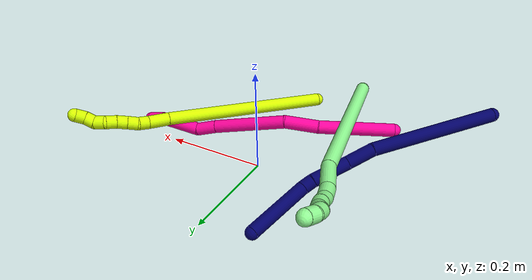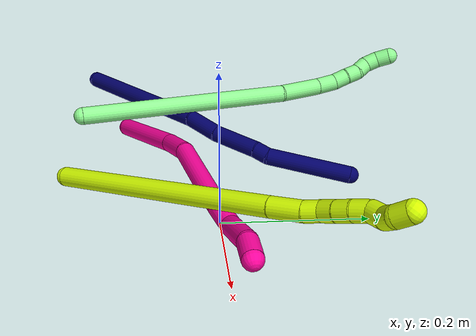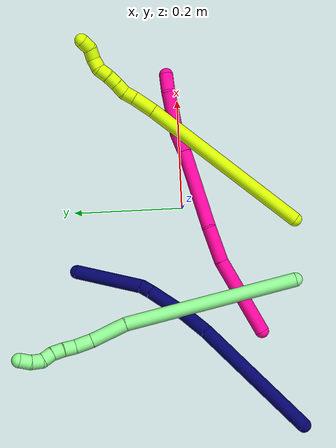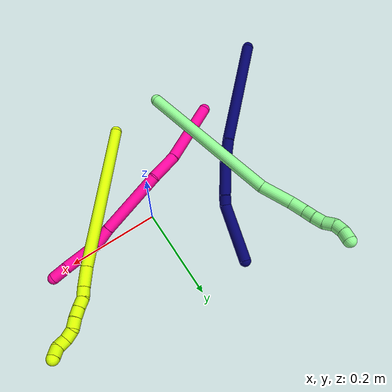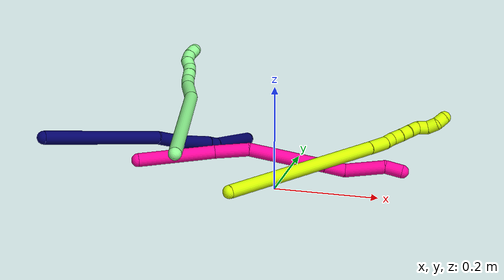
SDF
<sdf version="1.7">
 <world name="default">
  <model name="7">
   <static>0</static>
   <link name="7">
    <collision name="collision-cylinder-e_1_1_4">
     <pose>0.03947 0.033111 -0.104006 -2.83338 0.346983 -1.69114</pose>
     <geometry><cylinder><radius>0.0125</radius><length>0.232133</length></cylinder></geometry>
     <surface>
      <friction><ode><mu>1.16</mu><mu2>1.16</mu2><slip1>0</slip1><slip2>0</slip2></ode></friction>
      <contact><ode><kp>1e+06</kp><kd>1</kd><max_vel>0</max_vel><min_depth>0.001</min_depth></ode></contact>
     </surface>
    </collision>
    <visual name="visual-cylinder-e_1_1_4">
     <pose>0.03947 0.033111 -0.104006 -2.83338 0.346983 -1.69114</pose>
     <geometry><cylinder><radius>0.0125</radius><length>0.232133</length></cylinder></geometry>
     <material><ambient>0.003922 0 0.403922 1</ambient></material>
    </visual>
    <collision name="collision-cylinder-e_2_4_5">
     <pose>0.083935 0.070529 -0.233065 -2.97134 0.194028 -1.70188</pose>
     <geometry><cylinder><radius>0.0125</radius><length>0.051814</length></cylinder></geometry>
     <surface>
      <friction><ode><mu>1.16</mu><mu2>1.16</mu2><slip1>0</slip1><slip2>0</slip2></ode></friction>
      <contact><ode><kp>1e+06</kp><kd>1</kd><max_vel>0</max_vel><min_depth>0.001</min_depth></ode></contact>
     </surface>
    </collision>
    <visual name="visual-cylinder-e_2_4_5">
     <pose>0.083935 0.070529 -0.233065 -2.97134 0.194028 -1.70188</pose>
     <geometry><cylinder><radius>0.0125</radius><length>0.051814</length></cylinder></geometry>
     <material><ambient>0.003922 0 0.403922 1</ambient></material>
    </visual>
    <collision name="collision-cylinder-e_3_5_6">
     <pose>0.094014 0.085254 -0.291618 -2.84008 0.143908 -0.886062</pose>
     <geometry><cylinder><radius>0.0125</radius><length>0.070897</length></cylinder></geometry>
     <surface>
      <friction><ode><mu>1.16</mu><mu2>1.16</mu2><slip1>0</slip1><slip2>0</slip2></ode></friction>
      <contact><ode><kp>1e+06</kp><kd>1</kd><max_vel>0</max_vel><min_depth>0.001</min_depth></ode></contact>
     </surface>
    </collision>
    <visual name="visual-cylinder-e_3_5_6">
     <pose>0.094014 0.085254 -0.291618 -2.84008 0.143908 -0.886062</pose>
     <geometry><cylinder><radius>0.0125</radius><length>0.070897</length></cylinder></geometry>
     <material><ambient>0.003922 0 0.403922 1</ambient></material>
    </visual>
    <collision name="collision-cylinder-e_4_6_7">
     <pose>0.099503 0.097653 -0.335599 -2.95478 0.037955 -0.39979</pose>
     <geometry><cylinder><radius>0.0125</radius><length>0.021349</length></cylinder></geometry>
     <surface>
      <friction><ode><mu>1.16</mu><mu2>1.16</mu2><slip1>0</slip1><slip2>0</slip2></ode></friction>
      <contact><ode><kp>1e+06</kp><kd>1</kd><max_vel>0</max_vel><min_depth>0.001</min_depth></ode></contact>
     </surface>
    </collision>
    <visual name="visual-cylinder-e_4_6_7">
     <pose>0.099503 0.097653 -0.335599 -2.95478 0.037955 -0.39979</pose>
     <geometry><cylinder><radius>0.0125</radius><length>0.021349</length></cylinder></geometry>
     <material><ambient>0.003922 0 0.403922 1</ambient></material>
    </visual>
    <collision name="collision-cylinder-e_5_7_2">
     <pose>0.089048 0.126234 -0.400912 -2.68992 -0.176348 0.734621</pose>
     <geometry><cylinder><radius>0.0125</radius><length>0.123807</length></cylinder></geometry>
     <surface>
      <friction><ode><mu>1.16</mu><mu2>1.16</mu2><slip1>0</slip1><slip2>0</slip2></ode></friction>
      <contact><ode><kp>1e+06</kp><kd>1</kd><max_vel>0</max_vel><min_depth>0.001</min_depth></ode></contact>
     </surface>
    </collision>
    <visual name="visual-cylinder-e_5_7_2">
     <pose>0.089048 0.126234 -0.400912 -2.68992 -0.176348 0.734621</pose>
     <geometry><cylinder><radius>0.0125</radius><length>0.123807</length></cylinder></geometry>
     <material><ambient>0.003922 0 0.403922 1</ambient></material>
    </visual>
    <collision name="collision-sphere-2">
     <pose>0.078188 0.152834 -0.455744 0 -0 0</pose>
     <geometry><sphere><radius>0.0125</radius></sphere></geometry>
     <surface>
      <friction><ode><mu>1.16</mu><mu2>1.16</mu2><slip1>0</slip1><slip2>0</slip2></ode></friction>
      <contact><ode><kp>1e+06</kp><kd>1</kd><max_vel>0</max_vel><min_depth>0.001</min_depth></ode></contact>
     </surface>
    </collision>
    <visual name="visual-sphere-2">
     <pose>0.078188 0.152834 -0.455744 0 -0 0</pose>
     <geometry><sphere><radius>0.0125</radius></sphere></geometry>
     <material><ambient>0.003922 0 0.403922 1</ambient></material>
    </visual>
    <collision name="collision-sphere-7">
     <pose>0.099908 0.099634 -0.34608 0 -0 0</pose>
     <geometry><sphere><radius>0.0125</radius></sphere></geometry>
     <surface>
      <friction><ode><mu>1.16</mu><mu2>1.16</mu2><slip1>0</slip1><slip2>0</slip2></ode></friction>
      <contact><ode><kp>1e+06</kp><kd>1</kd><max_vel>0</max_vel><min_depth>0.001</min_depth></ode></contact>
     </surface>
    </collision>
    <visual name="visual-sphere-7">
     <pose>0.099908 0.099634 -0.34608 0 -0 0</pose>
     <geometry><sphere><radius>0.0125</radius></sphere></geometry>
     <material><ambient>0.003922 0 0.403922 1</ambient></material>
    </visual>
    <collision name="collision-sphere-6">
     <pose>0.099098 0.095672 -0.325118 0 -0 0</pose>
     <geometry><sphere><radius>0.0125</radius></sphere></geometry>
     <surface>
      <friction><ode><mu>1.16</mu><mu2>1.16</mu2><slip1>0</slip1><slip2>0</slip2></ode></friction>
      <contact><ode><kp>1e+06</kp><kd>1</kd><max_vel>0</max_vel><min_depth>0.001</min_depth></ode></contact>
     </surface>
    </collision>
    <visual name="visual-sphere-6">
     <pose>0.099098 0.095672 -0.325118 0 -0 0</pose>
     <geometry><sphere><radius>0.0125</radius></sphere></geometry>
     <material><ambient>0.003922 0 0.403922 1</ambient></material>
    </visual>
    <collision name="collision-sphere-5">
     <pose>0.08893 0.074836 -0.258119 0 -0 0</pose>
     <geometry><sphere><radius>0.0125</radius></sphere></geometry>
     <surface>
      <friction><ode><mu>1.16</mu><mu2>1.16</mu2><slip1>0</slip1><slip2>0</slip2></ode></friction>
      <contact><ode><kp>1e+06</kp><kd>1</kd><max_vel>0</max_vel><min_depth>0.001</min_depth></ode></contact>
     </surface>
    </collision>
    <visual name="visual-sphere-5">
     <pose>0.08893 0.074836 -0.258119 0 -0 0</pose>
     <geometry><sphere><radius>0.0125</radius></sphere></geometry>
     <material><ambient>0.003922 0 0.403922 1</ambient></material>
    </visual>
    <collision name="collision-sphere-1">
     <geometry><sphere><radius>0.0125</radius></sphere></geometry>
     <surface>
      <friction><ode><mu>1.16</mu><mu2>1.16</mu2><slip1>0</slip1><slip2>0</slip2></ode></friction>
      <contact><ode><kp>1e+06</kp><kd>1</kd><max_vel>0</max_vel><min_depth>0.001</min_depth></ode></contact>
     </surface>
    </collision>
    <visual name="visual-sphere-1">
     <geometry><sphere><radius>0.0125</radius></sphere></geometry>
     <material><ambient>0.003922 0 0.403922 1</ambient></material>
    </visual>
    <collision name="collision-sphere-4">
     <pose>0.07894 0.066222 -0.208012 0 -0 0</pose>
     <geometry><sphere><radius>0.0125</radius></sphere></geometry>
     <surface>
      <friction><ode><mu>1.16</mu><mu2>1.16</mu2><slip1>0</slip1><slip2>0</slip2></ode></friction>
      <contact><ode><kp>1e+06</kp><kd>1</kd><max_vel>0</max_vel><min_depth>0.001</min_depth></ode></contact>
     </surface>
    </collision>
    <visual name="visual-sphere-4">
     <pose>0.07894 0.066222 -0.208012 0 -0 0</pose>
     <geometry><sphere><radius>0.0125</radius></sphere></geometry>
     <material><ambient>0.003922 0 0.403922 1</ambient></material>
    </visual>
    <inertial>
     <pose>0.066651 0.070196 -0.227389 0 -0 0</pose>
     <mass>0.5</mass>
     <inertia>
      <ixx>-0.000886</ixx>
      <ixy>0</ixy>
      <ixz>0</ixz>
      <iyy>-0.000791</iyy>
      <iyz>0</iyz>
      <izz>-0.000754</izz>
     </inertia>
    </inertial>
   </link>
   <pose>-0.386218 -0.188794 0.127963 0.979344 -0.295718 -0.386982</pose>
  </model>
  <model name="13">
   <static>0</static>
   <link name="13">
    <collision name="collision-cylinder-e_1_1_4">
     <pose>-0.015939 -0.008611 -0.150433 3.08441 -0.105389 -2.14788</pose>
     <geometry><cylinder><radius>0.0125</radius><length>0.303041</length></cylinder></geometry>
     <surface>
      <friction><ode><mu>1.16</mu><mu2>1.16</mu2><slip1>0</slip1><slip2>0</slip2></ode></friction>
      <contact><ode><kp>1e+06</kp><kd>1</kd><max_vel>0</max_vel><min_depth>0.001</min_depth></ode></contact>
     </surface>
    </collision>
    <visual name="visual-cylinder-e_1_1_4">
     <pose>-0.015939 -0.008611 -0.150433 3.08441 -0.105389 -2.14788</pose>
     <geometry><cylinder><radius>0.0125</radius><length>0.303041</length></cylinder></geometry>
     <material><ambient>0.564706 0.984314 0.572549 1</ambient></material>
    </visual>
    <collision name="collision-cylinder-e_2_4_5">
     <pose>-0.041467 -0.019159 -0.33129 3.07804 -0.304751 -2.73337</pose>
     <geometry><cylinder><radius>0.0125</radius><length>0.063915</length></cylinder></geometry>
     <surface>
      <friction><ode><mu>1.16</mu><mu2>1.16</mu2><slip1>0</slip1><slip2>0</slip2></ode></friction>
      <contact><ode><kp>1e+06</kp><kd>1</kd><max_vel>0</max_vel><min_depth>0.001</min_depth></ode></contact>
     </surface>
    </collision>
    <visual name="visual-cylinder-e_2_4_5">
     <pose>-0.041467 -0.019159 -0.33129 3.07804 -0.304751 -2.73337</pose>
     <geometry><cylinder><radius>0.0125</radius><length>0.063915</length></cylinder></geometry>
     <material><ambient>0.564706 0.984314 0.572549 1</ambient></material>
    </visual>
    <collision name="collision-cylinder-e_3_5_6">
     <pose>-0.054209 -0.020392 -0.376513 -3.0941 -0.209683 2.69761</pose>
     <geometry><cylinder><radius>0.0125</radius><length>0.030296</length></cylinder></geometry>
     <surface>
      <friction><ode><mu>1.16</mu><mu2>1.16</mu2><slip1>0</slip1><slip2>0</slip2></ode></friction>
      <contact><ode><kp>1e+06</kp><kd>1</kd><max_vel>0</max_vel><min_depth>0.001</min_depth></ode></contact>
     </surface>
    </collision>
    <visual name="visual-cylinder-e_3_5_6">
     <pose>-0.054209 -0.020392 -0.376513 -3.0941 -0.209683 2.69761</pose>
     <geometry><cylinder><radius>0.0125</radius><length>0.030296</length></cylinder></geometry>
     <material><ambient>0.564706 0.984314 0.572549 1</ambient></material>
    </visual>
    <collision name="collision-cylinder-e_4_6_7">
     <pose>-0.058574 -0.016677 -0.401652 -2.85824 -0.112022 0.749091</pose>
     <geometry><cylinder><radius>0.0125</radius><length>0.021674</length></cylinder></geometry>
     <surface>
      <friction><ode><mu>1.16</mu><mu2>1.16</mu2><slip1>0</slip1><slip2>0</slip2></ode></friction>
      <contact><ode><kp>1e+06</kp><kd>1</kd><max_vel>0</max_vel><min_depth>0.001</min_depth></ode></contact>
     </surface>
    </collision>
    <visual name="visual-cylinder-e_4_6_7">
     <pose>-0.058574 -0.016677 -0.401652 -2.85824 -0.112022 0.749091</pose>
     <geometry><cylinder><radius>0.0125</radius><length>0.021674</length></cylinder></geometry>
     <material><ambient>0.564706 0.984314 0.572549 1</ambient></material>
    </visual>
    <collision name="collision-cylinder-e_5_7_8">
     <pose>-0.061884 -0.01186 -0.421718 -2.95793 -0.209026 1.70061</pose>
     <geometry><cylinder><radius>0.0125</radius><length>0.020227</length></cylinder></geometry>
     <surface>
      <friction><ode><mu>1.16</mu><mu2>1.16</mu2><slip1>0</slip1><slip2>0</slip2></ode></friction>
      <contact><ode><kp>1e+06</kp><kd>1</kd><max_vel>0</max_vel><min_depth>0.001</min_depth></ode></contact>
     </surface>
    </collision>
    <visual name="visual-cylinder-e_5_7_8">
     <pose>-0.061884 -0.01186 -0.421718 -2.95793 -0.209026 1.70061</pose>
     <geometry><cylinder><radius>0.0125</radius><length>0.020227</length></cylinder></geometry>
     <material><ambient>0.564706 0.984314 0.572549 1</ambient></material>
    </visual>
    <collision name="collision-cylinder-e_6_8_9">
     <pose>-0.06893 -0.006731 -0.439899 -2.76716 -0.498802 1.86261</pose>
     <geometry><cylinder><radius>0.0125</radius><length>0.020688</length></cylinder></geometry>
     <surface>
      <friction><ode><mu>1.16</mu><mu2>1.16</mu2><slip1>0</slip1><slip2>0</slip2></ode></friction>
      <contact><ode><kp>1e+06</kp><kd>1</kd><max_vel>0</max_vel><min_depth>0.001</min_depth></ode></contact>
     </surface>
    </collision>
    <visual name="visual-cylinder-e_6_8_9">
     <pose>-0.06893 -0.006731 -0.439899 -2.76716 -0.498802 1.86261</pose>
     <geometry><cylinder><radius>0.0125</radius><length>0.020688</length></cylinder></geometry>
     <material><ambient>0.564706 0.984314 0.572549 1</ambient></material>
    </visual>
    <collision name="collision-cylinder-e_7_9_10">
     <pose>-0.073878 -0.000278 -0.45788 -2.82412 3e-05 -0.000185</pose>
     <geometry><cylinder><radius>0.0125</radius><length>0.020055</length></cylinder></geometry>
     <surface>
      <friction><ode><mu>1.16</mu><mu2>1.16</mu2><slip1>0</slip1><slip2>0</slip2></ode></friction>
      <contact><ode><kp>1e+06</kp><kd>1</kd><max_vel>0</max_vel><min_depth>0.001</min_depth></ode></contact>
     </surface>
    </collision>
    <visual name="visual-cylinder-e_7_9_10">
     <pose>-0.073878 -0.000278 -0.45788 -2.82412 3e-05 -0.000185</pose>
     <geometry><cylinder><radius>0.0125</radius><length>0.020055</length></cylinder></geometry>
     <material><ambient>0.564706 0.984314 0.572549 1</ambient></material>
    </visual>
    <collision name="collision-cylinder-e_8_10_2">
     <pose>-0.070942 0.005665 -0.4766 -2.84469 0.296352 -1.56892</pose>
     <geometry><cylinder><radius>0.0125</radius><length>0.020105</length></cylinder></geometry>
     <surface>
      <friction><ode><mu>1.16</mu><mu2>1.16</mu2><slip1>0</slip1><slip2>0</slip2></ode></friction>
      <contact><ode><kp>1e+06</kp><kd>1</kd><max_vel>0</max_vel><min_depth>0.001</min_depth></ode></contact>
     </surface>
    </collision>
    <visual name="visual-cylinder-e_8_10_2">
     <pose>-0.070942 0.005665 -0.4766 -2.84469 0.296352 -1.56892</pose>
     <geometry><cylinder><radius>0.0125</radius><length>0.020105</length></cylinder></geometry>
     <material><ambient>0.564706 0.984314 0.572549 1</ambient></material>
    </visual>
    <collision name="collision-sphere-2">
     <pose>-0.068007 0.008478 -0.485794 0 -0 0</pose>
     <geometry><sphere><radius>0.0125</radius></sphere></geometry>
     <surface>
      <friction><ode><mu>1.16</mu><mu2>1.16</mu2><slip1>0</slip1><slip2>0</slip2></ode></friction>
      <contact><ode><kp>1e+06</kp><kd>1</kd><max_vel>0</max_vel><min_depth>0.001</min_depth></ode></contact>
     </surface>
    </collision>
    <visual name="visual-sphere-2">
     <pose>-0.068007 0.008478 -0.485794 0 -0 0</pose>
     <geometry><sphere><radius>0.0125</radius></sphere></geometry>
     <material><ambient>0.564706 0.984314 0.572549 1</ambient></material>
    </visual>
    <collision name="collision-sphere-10">
     <pose>-0.073878 0.002852 -0.467407 0 -0 0</pose>
     <geometry><sphere><radius>0.0125</radius></sphere></geometry>
     <surface>
      <friction><ode><mu>1.16</mu><mu2>1.16</mu2><slip1>0</slip1><slip2>0</slip2></ode></friction>
      <contact><ode><kp>1e+06</kp><kd>1</kd><max_vel>0</max_vel><min_depth>0.001</min_depth></ode></contact>
     </surface>
    </collision>
    <visual name="visual-sphere-10">
     <pose>-0.073878 0.002852 -0.467407 0 -0 0</pose>
     <geometry><sphere><radius>0.0125</radius></sphere></geometry>
     <material><ambient>0.564706 0.984314 0.572549 1</ambient></material>
    </visual>
    <collision name="collision-sphere-9">
     <pose>-0.073879 -0.003408 -0.448353 0 -0 0</pose>
     <geometry><sphere><radius>0.0125</radius></sphere></geometry>
     <surface>
      <friction><ode><mu>1.16</mu><mu2>1.16</mu2><slip1>0</slip1><slip2>0</slip2></ode></friction>
      <contact><ode><kp>1e+06</kp><kd>1</kd><max_vel>0</max_vel><min_depth>0.001</min_depth></ode></contact>
     </surface>
    </collision>
    <visual name="visual-sphere-9">
     <pose>-0.073879 -0.003408 -0.448353 0 -0 0</pose>
     <geometry><sphere><radius>0.0125</radius></sphere></geometry>
     <material><ambient>0.564706 0.984314 0.572549 1</ambient></material>
    </visual>
    <collision name="collision-sphere-4">
     <pose>-0.031878 -0.017223 -0.300867 0 -0 0</pose>
     <geometry><sphere><radius>0.0125</radius></sphere></geometry>
     <surface>
      <friction><ode><mu>1.16</mu><mu2>1.16</mu2><slip1>0</slip1><slip2>0</slip2></ode></friction>
      <contact><ode><kp>1e+06</kp><kd>1</kd><max_vel>0</max_vel><min_depth>0.001</min_depth></ode></contact>
     </surface>
    </collision>
    <visual name="visual-sphere-4">
     <pose>-0.031878 -0.017223 -0.300867 0 -0 0</pose>
     <geometry><sphere><radius>0.0125</radius></sphere></geometry>
     <material><ambient>0.564706 0.984314 0.572549 1</ambient></material>
    </visual>
    <collision name="collision-sphere-1">
     <geometry><sphere><radius>0.0125</radius></sphere></geometry>
     <surface>
      <friction><ode><mu>1.16</mu><mu2>1.16</mu2><slip1>0</slip1><slip2>0</slip2></ode></friction>
      <contact><ode><kp>1e+06</kp><kd>1</kd><max_vel>0</max_vel><min_depth>0.001</min_depth></ode></contact>
     </surface>
    </collision>
    <visual name="visual-sphere-1">
     <geometry><sphere><radius>0.0125</radius></sphere></geometry>
     <material><ambient>0.564706 0.984314 0.572549 1</ambient></material>
    </visual>
    <collision name="collision-sphere-8">
     <pose>-0.063982 -0.010053 -0.431445 0 -0 0</pose>
     <geometry><sphere><radius>0.0125</radius></sphere></geometry>
     <surface>
      <friction><ode><mu>1.16</mu><mu2>1.16</mu2><slip1>0</slip1><slip2>0</slip2></ode></friction>
      <contact><ode><kp>1e+06</kp><kd>1</kd><max_vel>0</max_vel><min_depth>0.001</min_depth></ode></contact>
     </surface>
    </collision>
    <visual name="visual-sphere-8">
     <pose>-0.063982 -0.010053 -0.431445 0 -0 0</pose>
     <geometry><sphere><radius>0.0125</radius></sphere></geometry>
     <material><ambient>0.564706 0.984314 0.572549 1</ambient></material>
    </visual>
    <collision name="collision-sphere-5">
     <pose>-0.051056 -0.021095 -0.361713 0 -0 0</pose>
     <geometry><sphere><radius>0.0125</radius></sphere></geometry>
     <surface>
      <friction><ode><mu>1.16</mu><mu2>1.16</mu2><slip1>0</slip1><slip2>0</slip2></ode></friction>
      <contact><ode><kp>1e+06</kp><kd>1</kd><max_vel>0</max_vel><min_depth>0.001</min_depth></ode></contact>
     </surface>
    </collision>
    <visual name="visual-sphere-5">
     <pose>-0.051056 -0.021095 -0.361713 0 -0 0</pose>
     <geometry><sphere><radius>0.0125</radius></sphere></geometry>
     <material><ambient>0.564706 0.984314 0.572549 1</ambient></material>
    </visual>
    <collision name="collision-sphere-6">
     <pose>-0.057362 -0.019688 -0.391313 0 -0 0</pose>
     <geometry><sphere><radius>0.0125</radius></sphere></geometry>
     <surface>
      <friction><ode><mu>1.16</mu><mu2>1.16</mu2><slip1>0</slip1><slip2>0</slip2></ode></friction>
      <contact><ode><kp>1e+06</kp><kd>1</kd><max_vel>0</max_vel><min_depth>0.001</min_depth></ode></contact>
     </surface>
    </collision>
    <visual name="visual-sphere-6">
     <pose>-0.057362 -0.019688 -0.391313 0 -0 0</pose>
     <geometry><sphere><radius>0.0125</radius></sphere></geometry>
     <material><ambient>0.564706 0.984314 0.572549 1</ambient></material>
    </visual>
    <collision name="collision-sphere-7">
     <pose>-0.059785 -0.013667 -0.411992 0 -0 0</pose>
     <geometry><sphere><radius>0.0125</radius></sphere></geometry>
     <surface>
      <friction><ode><mu>1.16</mu><mu2>1.16</mu2><slip1>0</slip1><slip2>0</slip2></ode></friction>
      <contact><ode><kp>1e+06</kp><kd>1</kd><max_vel>0</max_vel><min_depth>0.001</min_depth></ode></contact>
     </surface>
    </collision>
    <visual name="visual-sphere-7">
     <pose>-0.059785 -0.013667 -0.411992 0 -0 0</pose>
     <geometry><sphere><radius>0.0125</radius></sphere></geometry>
     <material><ambient>0.564706 0.984314 0.572549 1</ambient></material>
    </visual>
    <inertial>
     <pose>-0.031956 -0.010168 -0.246539 0 -0 0</pose>
     <mass>0.5</mass>
     <inertia>
      <ixx>-0.00324</ixx>
      <ixy>0</ixy>
      <ixz>0</ixz>
      <iyy>-0.000642</iyy>
      <iyz>0</iyz>
      <izz>0.000348</izz>
     </inertia>
    </inertial>
   </link>
   <pose>-0.135748 -0.187486 0.118439 1.66308 0.185042 0.106726</pose>
  </model>
  <model name="15">
   <static>0</static>
   <link name="15">
    <collision name="collision-cylinder-e_1_1_4">
     <pose>0.083939 0.063215 -0.12023 -2.65753 0.553508 -1.71061</pose>
     <geometry><cylinder><radius>0.0125</radius><length>0.319357</length></cylinder></geometry>
     <surface>
      <friction><ode><mu>1.16</mu><mu2>1.16</mu2><slip1>0</slip1><slip2>0</slip2></ode></friction>
      <contact><ode><kp>1e+06</kp><kd>1</kd><max_vel>0</max_vel><min_depth>0.001</min_depth></ode></contact>
     </surface>
    </collision>
    <visual name="visual-cylinder-e_1_1_4">
     <pose>0.083939 0.063215 -0.12023 -2.65753 0.553508 -1.71061</pose>
     <geometry><cylinder><radius>0.0125</radius><length>0.319357</length></cylinder></geometry>
     <material><ambient>0.835294 1 0 1</ambient></material>
    </visual>
    <collision name="collision-cylinder-e_2_4_5">
     <pose>0.177358 0.134912 -0.255988 -2.6416 0.491888 -1.55377</pose>
     <geometry><cylinder><radius>0.0125</radius><length>0.040146</length></cylinder></geometry>
     <surface>
      <friction><ode><mu>1.16</mu><mu2>1.16</mu2><slip1>0</slip1><slip2>0</slip2></ode></friction>
      <contact><ode><kp>1e+06</kp><kd>1</kd><max_vel>0</max_vel><min_depth>0.001</min_depth></ode></contact>
     </surface>
    </collision>
    <visual name="visual-cylinder-e_2_4_5">
     <pose>0.177358 0.134912 -0.255988 -2.6416 0.491888 -1.55377</pose>
     <geometry><cylinder><radius>0.0125</radius><length>0.040146</length></cylinder></geometry>
     <material><ambient>0.835294 1 0 1</ambient></material>
    </visual>
    <collision name="collision-cylinder-e_3_5_6">
     <pose>0.191134 0.149038 -0.278721 -2.47723 0.438839 -1.14779</pose>
     <geometry><cylinder><radius>0.0125</radius><length>0.020222</length></cylinder></geometry>
     <surface>
      <friction><ode><mu>1.16</mu><mu2>1.16</mu2><slip1>0</slip1><slip2>0</slip2></ode></friction>
      <contact><ode><kp>1e+06</kp><kd>1</kd><max_vel>0</max_vel><min_depth>0.001</min_depth></ode></contact>
     </surface>
    </collision>
    <visual name="visual-cylinder-e_3_5_6">
     <pose>0.191134 0.149038 -0.278721 -2.47723 0.438839 -1.14779</pose>
     <geometry><cylinder><radius>0.0125</radius><length>0.020222</length></cylinder></geometry>
     <material><ambient>0.835294 1 0 1</ambient></material>
    </visual>
    <collision name="collision-cylinder-e_4_6_7">
     <pose>0.202512 0.158712 -0.291867 -2.54537 0.778655 -1.85594</pose>
     <geometry><cylinder><radius>0.0125</radius><length>0.020167</length></cylinder></geometry>
     <surface>
      <friction><ode><mu>1.16</mu><mu2>1.16</mu2><slip1>0</slip1><slip2>0</slip2></ode></friction>
      <contact><ode><kp>1e+06</kp><kd>1</kd><max_vel>0</max_vel><min_depth>0.001</min_depth></ode></contact>
     </surface>
    </collision>
    <visual name="visual-cylinder-e_4_6_7">
     <pose>0.202512 0.158712 -0.291867 -2.54537 0.778655 -1.85594</pose>
     <geometry><cylinder><radius>0.0125</radius><length>0.020167</length></cylinder></geometry>
     <material><ambient>0.835294 1 0 1</ambient></material>
    </visual>
    <collision name="collision-cylinder-e_5_7_8">
     <pose>0.21604 0.167435 -0.303855 -2.48174 0.699862 -1.6344</pose>
     <geometry><cylinder><radius>0.0125</radius><length>0.020015</length></cylinder></geometry>
     <surface>
      <friction><ode><mu>1.16</mu><mu2>1.16</mu2><slip1>0</slip1><slip2>0</slip2></ode></friction>
      <contact><ode><kp>1e+06</kp><kd>1</kd><max_vel>0</max_vel><min_depth>0.001</min_depth></ode></contact>
     </surface>
    </collision>
    <visual name="visual-cylinder-e_5_7_8">
     <pose>0.21604 0.167435 -0.303855 -2.48174 0.699862 -1.6344</pose>
     <geometry><cylinder><radius>0.0125</radius><length>0.020015</length></cylinder></geometry>
     <material><ambient>0.835294 1 0 1</ambient></material>
    </visual>
    <collision name="collision-cylinder-e_6_8_9">
     <pose>0.227922 0.176952 -0.316828 -2.53304 0.572175 -1.50548</pose>
     <geometry><cylinder><radius>0.0125</radius><length>0.020078</length></cylinder></geometry>
     <surface>
      <friction><ode><mu>1.16</mu><mu2>1.16</mu2><slip1>0</slip1><slip2>0</slip2></ode></friction>
      <contact><ode><kp>1e+06</kp><kd>1</kd><max_vel>0</max_vel><min_depth>0.001</min_depth></ode></contact>
     </surface>
    </collision>
    <visual name="visual-cylinder-e_6_8_9">
     <pose>0.227922 0.176952 -0.316828 -2.53304 0.572175 -1.50548</pose>
     <geometry><cylinder><radius>0.0125</radius><length>0.020078</length></cylinder></geometry>
     <material><ambient>0.835294 1 0 1</ambient></material>
    </visual>
    <collision name="collision-cylinder-e_7_9_10">
     <pose>0.240975 0.182073 -0.330227 -3.09598 0.865818 -3.04297</pose>
     <geometry><cylinder><radius>0.0125</radius><length>0.020003</length></cylinder></geometry>
     <surface>
      <friction><ode><mu>1.16</mu><mu2>1.16</mu2><slip1>0</slip1><slip2>0</slip2></ode></friction>
      <contact><ode><kp>1e+06</kp><kd>1</kd><max_vel>0</max_vel><min_depth>0.001</min_depth></ode></contact>
     </surface>
    </collision>
    <visual name="visual-cylinder-e_7_9_10">
     <pose>0.240975 0.182073 -0.330227 -3.09598 0.865818 -3.04297</pose>
     <geometry><cylinder><radius>0.0125</radius><length>0.020003</length></cylinder></geometry>
     <material><ambient>0.835294 1 0 1</ambient></material>
    </visual>
    <collision name="collision-cylinder-e_8_10_11">
     <pose>0.257949 0.184797 -0.339264 -2.3831 1.20998 -2.0959</pose>
     <geometry><cylinder><radius>0.0125</radius><length>0.020002</length></cylinder></geometry>
     <surface>
      <friction><ode><mu>1.16</mu><mu2>1.16</mu2><slip1>0</slip1><slip2>0</slip2></ode></friction>
      <contact><ode><kp>1e+06</kp><kd>1</kd><max_vel>0</max_vel><min_depth>0.001</min_depth></ode></contact>
     </surface>
    </collision>
    <visual name="visual-cylinder-e_8_10_11">
     <pose>0.257949 0.184797 -0.339264 -2.3831 1.20998 -2.0959</pose>
     <geometry><cylinder><radius>0.0125</radius><length>0.020002</length></cylinder></geometry>
     <material><ambient>0.835294 1 0 1</ambient></material>
    </visual>
    <collision name="collision-cylinder-e_9_11_2">
     <pose>0.273887 0.193397 -0.346153 -2.18224 0.717807 -1.24959</pose>
     <geometry><cylinder><radius>0.0125</radius><length>0.020011</length></cylinder></geometry>
     <surface>
      <friction><ode><mu>1.16</mu><mu2>1.16</mu2><slip1>0</slip1><slip2>0</slip2></ode></friction>
      <contact><ode><kp>1e+06</kp><kd>1</kd><max_vel>0</max_vel><min_depth>0.001</min_depth></ode></contact>
     </surface>
    </collision>
    <visual name="visual-cylinder-e_9_11_2">
     <pose>0.273887 0.193397 -0.346153 -2.18224 0.717807 -1.24959</pose>
     <geometry><cylinder><radius>0.0125</radius><length>0.020011</length></cylinder></geometry>
     <material><ambient>0.835294 1 0 1</ambient></material>
    </visual>
    <collision name="collision-sphere-2">
     <pose>0.280468 0.199568 -0.35048 0 -0 0</pose>
     <geometry><sphere><radius>0.0125</radius></sphere></geometry>
     <surface>
      <friction><ode><mu>1.16</mu><mu2>1.16</mu2><slip1>0</slip1><slip2>0</slip2></ode></friction>
      <contact><ode><kp>1e+06</kp><kd>1</kd><max_vel>0</max_vel><min_depth>0.001</min_depth></ode></contact>
     </surface>
    </collision>
    <visual name="visual-sphere-2">
     <pose>0.280468 0.199568 -0.35048 0 -0 0</pose>
     <geometry><sphere><radius>0.0125</radius></sphere></geometry>
     <material><ambient>0.835294 1 0 1</ambient></material>
    </visual>
    <collision name="collision-sphere-11">
     <pose>0.267306 0.187226 -0.341827 0 -0 0</pose>
     <geometry><sphere><radius>0.0125</radius></sphere></geometry>
     <surface>
      <friction><ode><mu>1.16</mu><mu2>1.16</mu2><slip1>0</slip1><slip2>0</slip2></ode></friction>
      <contact><ode><kp>1e+06</kp><kd>1</kd><max_vel>0</max_vel><min_depth>0.001</min_depth></ode></contact>
     </surface>
    </collision>
    <visual name="visual-sphere-11">
     <pose>0.267306 0.187226 -0.341827 0 -0 0</pose>
     <geometry><sphere><radius>0.0125</radius></sphere></geometry>
     <material><ambient>0.835294 1 0 1</ambient></material>
    </visual>
    <collision name="collision-sphere-10">
     <pose>0.248592 0.182368 -0.336701 0 -0 0</pose>
     <geometry><sphere><radius>0.0125</radius></sphere></geometry>
     <surface>
      <friction><ode><mu>1.16</mu><mu2>1.16</mu2><slip1>0</slip1><slip2>0</slip2></ode></friction>
      <contact><ode><kp>1e+06</kp><kd>1</kd><max_vel>0</max_vel><min_depth>0.001</min_depth></ode></contact>
     </surface>
    </collision>
    <visual name="visual-sphere-10">
     <pose>0.248592 0.182368 -0.336701 0 -0 0</pose>
     <geometry><sphere><radius>0.0125</radius></sphere></geometry>
     <material><ambient>0.835294 1 0 1</ambient></material>
    </visual>
    <collision name="collision-sphere-9">
     <pose>0.233357 0.181777 -0.323752 0 -0 0</pose>
     <geometry><sphere><radius>0.0125</radius></sphere></geometry>
     <surface>
      <friction><ode><mu>1.16</mu><mu2>1.16</mu2><slip1>0</slip1><slip2>0</slip2></ode></friction>
      <contact><ode><kp>1e+06</kp><kd>1</kd><max_vel>0</max_vel><min_depth>0.001</min_depth></ode></contact>
     </surface>
    </collision>
    <visual name="visual-sphere-9">
     <pose>0.233357 0.181777 -0.323752 0 -0 0</pose>
     <geometry><sphere><radius>0.0125</radius></sphere></geometry>
     <material><ambient>0.835294 1 0 1</ambient></material>
    </visual>
    <collision name="collision-sphere-4">
     <pose>0.167878 0.12643 -0.240461 0 -0 0</pose>
     <geometry><sphere><radius>0.0125</radius></sphere></geometry>
     <surface>
      <friction><ode><mu>1.16</mu><mu2>1.16</mu2><slip1>0</slip1><slip2>0</slip2></ode></friction>
      <contact><ode><kp>1e+06</kp><kd>1</kd><max_vel>0</max_vel><min_depth>0.001</min_depth></ode></contact>
     </surface>
    </collision>
    <visual name="visual-sphere-4">
     <pose>0.167878 0.12643 -0.240461 0 -0 0</pose>
     <geometry><sphere><radius>0.0125</radius></sphere></geometry>
     <material><ambient>0.835294 1 0 1</ambient></material>
    </visual>
    <collision name="collision-sphere-1">
     <geometry><sphere><radius>0.0125</radius></sphere></geometry>
     <surface>
      <friction><ode><mu>1.16</mu><mu2>1.16</mu2><slip1>0</slip1><slip2>0</slip2></ode></friction>
      <contact><ode><kp>1e+06</kp><kd>1</kd><max_vel>0</max_vel><min_depth>0.001</min_depth></ode></contact>
     </surface>
    </collision>
    <visual name="visual-sphere-1">
     <geometry><sphere><radius>0.0125</radius></sphere></geometry>
     <material><ambient>0.835294 1 0 1</ambient></material>
    </visual>
    <collision name="collision-sphere-8">
     <pose>0.222486 0.172128 -0.309903 0 -0 0</pose>
     <geometry><sphere><radius>0.0125</radius></sphere></geometry>
     <surface>
      <friction><ode><mu>1.16</mu><mu2>1.16</mu2><slip1>0</slip1><slip2>0</slip2></ode></friction>
      <contact><ode><kp>1e+06</kp><kd>1</kd><max_vel>0</max_vel><min_depth>0.001</min_depth></ode></contact>
     </surface>
    </collision>
    <visual name="visual-sphere-8">
     <pose>0.222486 0.172128 -0.309903 0 -0 0</pose>
     <geometry><sphere><radius>0.0125</radius></sphere></geometry>
     <material><ambient>0.835294 1 0 1</ambient></material>
    </visual>
    <collision name="collision-sphere-5">
     <pose>0.186838 0.143394 -0.271515 0 -0 0</pose>
     <geometry><sphere><radius>0.0125</radius></sphere></geometry>
     <surface>
      <friction><ode><mu>1.16</mu><mu2>1.16</mu2><slip1>0</slip1><slip2>0</slip2></ode></friction>
      <contact><ode><kp>1e+06</kp><kd>1</kd><max_vel>0</max_vel><min_depth>0.001</min_depth></ode></contact>
     </surface>
    </collision>
    <visual name="visual-sphere-5">
     <pose>0.186838 0.143394 -0.271515 0 -0 0</pose>
     <geometry><sphere><radius>0.0125</radius></sphere></geometry>
     <material><ambient>0.835294 1 0 1</ambient></material>
    </visual>
    <collision name="collision-sphere-6">
     <pose>0.19543 0.154681 -0.285928 0 -0 0</pose>
     <geometry><sphere><radius>0.0125</radius></sphere></geometry>
     <surface>
      <friction><ode><mu>1.16</mu><mu2>1.16</mu2><slip1>0</slip1><slip2>0</slip2></ode></friction>
      <contact><ode><kp>1e+06</kp><kd>1</kd><max_vel>0</max_vel><min_depth>0.001</min_depth></ode></contact>
     </surface>
    </collision>
    <visual name="visual-sphere-6">
     <pose>0.19543 0.154681 -0.285928 0 -0 0</pose>
     <geometry><sphere><radius>0.0125</radius></sphere></geometry>
     <material><ambient>0.835294 1 0 1</ambient></material>
    </visual>
    <collision name="collision-sphere-7">
     <pose>0.209594 0.162743 -0.297807 0 -0 0</pose>
     <geometry><sphere><radius>0.0125</radius></sphere></geometry>
     <surface>
      <friction><ode><mu>1.16</mu><mu2>1.16</mu2><slip1>0</slip1><slip2>0</slip2></ode></friction>
      <contact><ode><kp>1e+06</kp><kd>1</kd><max_vel>0</max_vel><min_depth>0.001</min_depth></ode></contact>
     </surface>
    </collision>
    <visual name="visual-sphere-7">
     <pose>0.209594 0.162743 -0.297807 0 -0 0</pose>
     <geometry><sphere><radius>0.0125</radius></sphere></geometry>
     <material><ambient>0.835294 1 0 1</ambient></material>
    </visual>
    <inertial>
     <pose>0.132473 0.099862 -0.185913 0 -0 0</pose>
     <mass>0.5</mass>
     <inertia>
      <ixx>-0.002611</ixx>
      <ixy>0</ixy>
      <ixz>0</ixz>
      <iyy>-0.00129</iyy>
      <iyz>0</iyz>
      <izz>-0.002557</izz>
     </inertia>
    </inertial>
   </link>
   <pose>-0.030869 -0.200256 0.06032 0.910254 -0.400135 -0.120023</pose>
  </model>
  <model name="18">
   <static>0</static>
   <link name="18">
    <collision name="collision-cylinder-e_1_1_4">
     <pose>0.04017 0.02667 -0.053201 -2.6769 0.593749 -1.82486</pose>
     <geometry><cylinder><radius>0.0125</radius><length>0.1436</length></cylinder></geometry>
     <surface>
      <friction><ode><mu>1.16</mu><mu2>1.16</mu2><slip1>0</slip1><slip2>0</slip2></ode></friction>
      <contact><ode><kp>1e+06</kp><kd>1</kd><max_vel>0</max_vel><min_depth>0.001</min_depth></ode></contact>
     </surface>
    </collision>
    <visual name="visual-cylinder-e_1_1_4">
     <pose>0.04017 0.02667 -0.053201 -2.6769 0.593749 -1.82486</pose>
     <geometry><cylinder><radius>0.0125</radius><length>0.1436</length></cylinder></geometry>
     <material><ambient>1 0.007843 0.615686 1</ambient></material>
    </visual>
    <collision name="collision-cylinder-e_2_4_5">
     <pose>0.100222 0.059804 -0.130922 -2.88384 0.664944 -2.4235</pose>
     <geometry><cylinder><radius>0.0125</radius><length>0.064445</length></cylinder></geometry>
     <surface>
      <friction><ode><mu>1.16</mu><mu2>1.16</mu2><slip1>0</slip1><slip2>0</slip2></ode></friction>
      <contact><ode><kp>1e+06</kp><kd>1</kd><max_vel>0</max_vel><min_depth>0.001</min_depth></ode></contact>
     </surface>
    </collision>
    <visual name="visual-cylinder-e_2_4_5">
     <pose>0.100222 0.059804 -0.130922 -2.88384 0.664944 -2.4235</pose>
     <geometry><cylinder><radius>0.0125</radius><length>0.064445</length></cylinder></geometry>
     <material><ambient>1 0.007843 0.615686 1</ambient></material>
    </visual>
    <collision name="collision-cylinder-e_3_5_6">
     <pose>0.147996 0.075457 -0.221158 -3.00266 0.39792 -2.47701</pose>
     <geometry><cylinder><radius>0.0125</radius><length>0.143959</length></cylinder></geometry>
     <surface>
      <friction><ode><mu>1.16</mu><mu2>1.16</mu2><slip1>0</slip1><slip2>0</slip2></ode></friction>
      <contact><ode><kp>1e+06</kp><kd>1</kd><max_vel>0</max_vel><min_depth>0.001</min_depth></ode></contact>
     </surface>
    </collision>
    <visual name="visual-cylinder-e_3_5_6">
     <pose>0.147996 0.075457 -0.221158 -3.00266 0.39792 -2.47701</pose>
     <geometry><cylinder><radius>0.0125</radius><length>0.143959</length></cylinder></geometry>
     <material><ambient>1 0.007843 0.615686 1</ambient></material>
    </visual>
    <collision name="collision-cylinder-e_4_6_7">
     <pose>0.182647 0.088595 -0.3052 -2.92941 0.34602 -2.04704</pose>
     <geometry><cylinder><radius>0.0125</radius><length>0.039855</length></cylinder></geometry>
     <surface>
      <friction><ode><mu>1.16</mu><mu2>1.16</mu2><slip1>0</slip1><slip2>0</slip2></ode></friction>
      <contact><ode><kp>1e+06</kp><kd>1</kd><max_vel>0</max_vel><min_depth>0.001</min_depth></ode></contact>
     </surface>
    </collision>
    <visual name="visual-cylinder-e_4_6_7">
     <pose>0.182647 0.088595 -0.3052 -2.92941 0.34602 -2.04704</pose>
     <geometry><cylinder><radius>0.0125</radius><length>0.039855</length></cylinder></geometry>
     <material><ambient>1 0.007843 0.615686 1</ambient></material>
    </visual>
    <collision name="collision-cylinder-e_5_7_8">
     <pose>0.215574 0.095 -0.350985 -3.05233 0.759345 -2.91867</pose>
     <geometry><cylinder><radius>0.0125</radius><length>0.07602</length></cylinder></geometry>
     <surface>
      <friction><ode><mu>1.16</mu><mu2>1.16</mu2><slip1>0</slip1><slip2>0</slip2></ode></friction>
      <contact><ode><kp>1e+06</kp><kd>1</kd><max_vel>0</max_vel><min_depth>0.001</min_depth></ode></contact>
     </surface>
    </collision>
    <visual name="visual-cylinder-e_5_7_8">
     <pose>0.215574 0.095 -0.350985 -3.05233 0.759345 -2.91867</pose>
     <geometry><cylinder><radius>0.0125</radius><length>0.07602</length></cylinder></geometry>
     <material><ambient>1 0.007843 0.615686 1</ambient></material>
    </visual>
    <collision name="collision-cylinder-e_6_8_2">
     <pose>0.248221 0.0967 -0.393119 3.09001 0.415276 2.89791</pose>
     <geometry><cylinder><radius>0.0125</radius><length>0.03212</length></cylinder></geometry>
     <surface>
      <friction><ode><mu>1.16</mu><mu2>1.16</mu2><slip1>0</slip1><slip2>0</slip2></ode></friction>
      <contact><ode><kp>1e+06</kp><kd>1</kd><max_vel>0</max_vel><min_depth>0.001</min_depth></ode></contact>
     </surface>
    </collision>
    <visual name="visual-cylinder-e_6_8_2">
     <pose>0.248221 0.0967 -0.393119 3.09001 0.415276 2.89791</pose>
     <geometry><cylinder><radius>0.0125</radius><length>0.03212</length></cylinder></geometry>
     <material><ambient>1 0.007843 0.615686 1</ambient></material>
    </visual>
    <collision name="collision-sphere-2">
     <pose>0.2547 0.095942 -0.407794 0 -0 0</pose>
     <geometry><sphere><radius>0.0125</radius></sphere></geometry>
     <surface>
      <friction><ode><mu>1.16</mu><mu2>1.16</mu2><slip1>0</slip1><slip2>0</slip2></ode></friction>
      <contact><ode><kp>1e+06</kp><kd>1</kd><max_vel>0</max_vel><min_depth>0.001</min_depth></ode></contact>
     </surface>
    </collision>
    <visual name="visual-sphere-2">
     <pose>0.2547 0.095942 -0.407794 0 -0 0</pose>
     <geometry><sphere><radius>0.0125</radius></sphere></geometry>
     <material><ambient>1 0.007843 0.615686 1</ambient></material>
    </visual>
    <collision name="collision-sphere-4">
     <pose>0.08034 0.05334 -0.106402 0 -0 0</pose>
     <geometry><sphere><radius>0.0125</radius></sphere></geometry>
     <surface>
      <friction><ode><mu>1.16</mu><mu2>1.16</mu2><slip1>0</slip1><slip2>0</slip2></ode></friction>
      <contact><ode><kp>1e+06</kp><kd>1</kd><max_vel>0</max_vel><min_depth>0.001</min_depth></ode></contact>
     </surface>
    </collision>
    <visual name="visual-sphere-4">
     <pose>0.08034 0.05334 -0.106402 0 -0 0</pose>
     <geometry><sphere><radius>0.0125</radius></sphere></geometry>
     <material><ambient>1 0.007843 0.615686 1</ambient></material>
    </visual>
    <collision name="collision-sphere-1">
     <geometry><sphere><radius>0.0125</radius></sphere></geometry>
     <surface>
      <friction><ode><mu>1.16</mu><mu2>1.16</mu2><slip1>0</slip1><slip2>0</slip2></ode></friction>
      <contact><ode><kp>1e+06</kp><kd>1</kd><max_vel>0</max_vel><min_depth>0.001</min_depth></ode></contact>
     </surface>
    </collision>
    <visual name="visual-sphere-1">
     <geometry><sphere><radius>0.0125</radius></sphere></geometry>
     <material><ambient>1 0.007843 0.615686 1</ambient></material>
    </visual>
    <collision name="collision-sphere-8">
     <pose>0.241742 0.097458 -0.378443 0 -0 0</pose>
     <geometry><sphere><radius>0.0125</radius></sphere></geometry>
     <surface>
      <friction><ode><mu>1.16</mu><mu2>1.16</mu2><slip1>0</slip1><slip2>0</slip2></ode></friction>
      <contact><ode><kp>1e+06</kp><kd>1</kd><max_vel>0</max_vel><min_depth>0.001</min_depth></ode></contact>
     </surface>
    </collision>
    <visual name="visual-sphere-8">
     <pose>0.241742 0.097458 -0.378443 0 -0 0</pose>
     <geometry><sphere><radius>0.0125</radius></sphere></geometry>
     <material><ambient>1 0.007843 0.615686 1</ambient></material>
    </visual>
    <collision name="collision-sphere-5">
     <pose>0.120104 0.066268 -0.155442 0 -0 0</pose>
     <geometry><sphere><radius>0.0125</radius></sphere></geometry>
     <surface>
      <friction><ode><mu>1.16</mu><mu2>1.16</mu2><slip1>0</slip1><slip2>0</slip2></ode></friction>
      <contact><ode><kp>1e+06</kp><kd>1</kd><max_vel>0</max_vel><min_depth>0.001</min_depth></ode></contact>
     </surface>
    </collision>
    <visual name="visual-sphere-5">
     <pose>0.120104 0.066268 -0.155442 0 -0 0</pose>
     <geometry><sphere><radius>0.0125</radius></sphere></geometry>
     <material><ambient>1 0.007843 0.615686 1</ambient></material>
    </visual>
    <collision name="collision-sphere-6">
     <pose>0.175889 0.084647 -0.286874 0 -0 0</pose>
     <geometry><sphere><radius>0.0125</radius></sphere></geometry>
     <surface>
      <friction><ode><mu>1.16</mu><mu2>1.16</mu2><slip1>0</slip1><slip2>0</slip2></ode></friction>
      <contact><ode><kp>1e+06</kp><kd>1</kd><max_vel>0</max_vel><min_depth>0.001</min_depth></ode></contact>
     </surface>
    </collision>
    <visual name="visual-sphere-6">
     <pose>0.175889 0.084647 -0.286874 0 -0 0</pose>
     <geometry><sphere><radius>0.0125</radius></sphere></geometry>
     <material><ambient>1 0.007843 0.615686 1</ambient></material>
    </visual>
    <collision name="collision-sphere-7">
     <pose>0.189406 0.092543 -0.323526 0 -0 0</pose>
     <geometry><sphere><radius>0.0125</radius></sphere></geometry>
     <surface>
      <friction><ode><mu>1.16</mu><mu2>1.16</mu2><slip1>0</slip1><slip2>0</slip2></ode></friction>
      <contact><ode><kp>1e+06</kp><kd>1</kd><max_vel>0</max_vel><min_depth>0.001</min_depth></ode></contact>
     </surface>
    </collision>
    <visual name="visual-sphere-7">
     <pose>0.189406 0.092543 -0.323526 0 -0 0</pose>
     <geometry><sphere><radius>0.0125</radius></sphere></geometry>
     <material><ambient>1 0.007843 0.615686 1</ambient></material>
    </visual>
    <inertial>
     <pose>0.130346 0.064811 -0.198775 0 -0 0</pose>
     <mass>0.5</mass>
     <inertia>
      <ixx>-0.000637</ixx>
      <ixy>0</ixy>
      <ixz>0</ixz>
      <iyy>2.8e-05</iyy>
      <iyz>0</iyz>
      <izz>-0.000453</izz>
     </inertia>
    </inertial>
   </link>
   <pose>-0.225909 -0.129464 0.079589 0.135237 -0.930647 -0.005025</pose>
  </model>
 </world>
</sdf>
